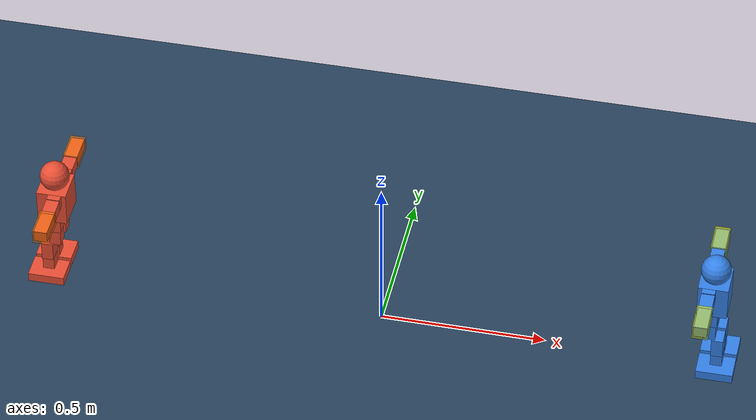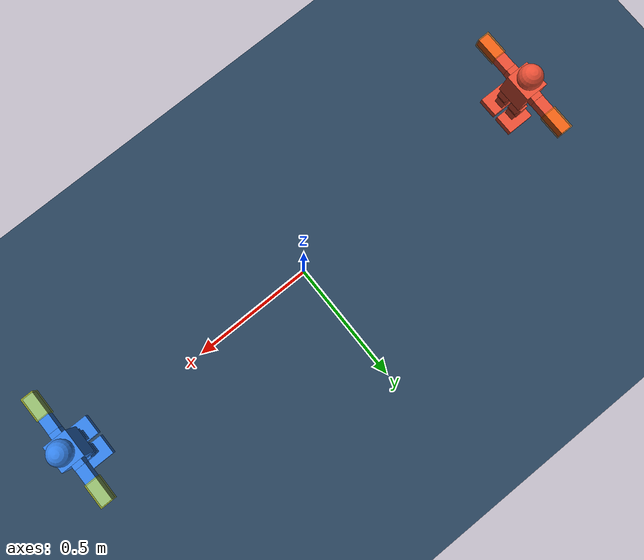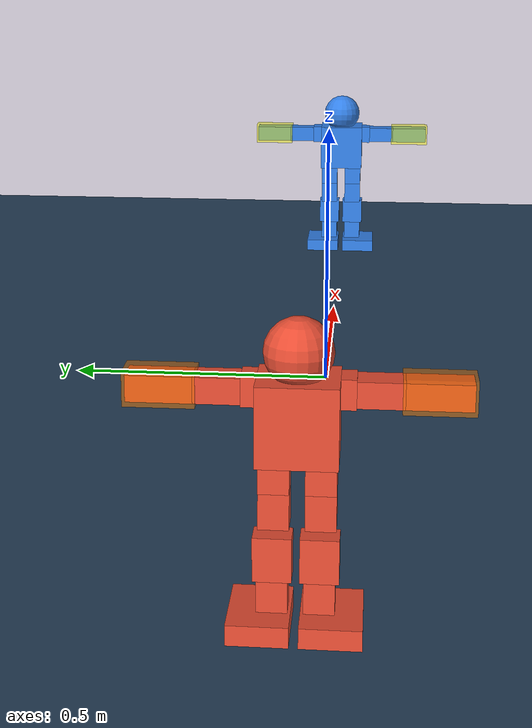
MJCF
<mujoco model="alpha_versus">

  <compiler angle="radian" autolimits="true"/>
  <option timestep="0.005" solver="Newton" iterations="50"/>
  <default>
    <geom solref="0.05 1" solimp="0.9 0.95 0.001"/>
    <joint damping="0.25" armature="0.01"/>
  </default>

  <asset>
    <texture type="2d" name="groundplane" builtin="checker"
             rgb1="0.2 0.3 0.4" rgb2="0.1 0.2 0.3"
             markrgb="0.8 0.8 0.8" width="300" height="300"/>
    <material name="groundplane" texture="groundplane" texuniform="true"
              texrepeat="5 5" reflectance="0.2"/>
  </asset>

  <worldbody>
    <light pos="0 0 3" dir="0 0 -1" diffuse="0.8 0.8 0.8"/>
    <geom name="floor" size="100 100 0.1" type="plane" material="groundplane"
          condim="3" friction="1 0.1 0.01"/>

    <!-- ══════════════ ROBOT 1 (blue) — x=+1.0, faces -X toward r2 ══════════ -->
    <body name="r1_root" pos="1.0 0 0.298" quat="0 0 0 1">
      <freejoint name="r1_freejoint"/>
      <geom name="r1_Body_link_col0" type="box" size="0.045 0.0525 0.0535"
            pos="0 0 0" rgba="0.2 0.5 0.9 1" condim="3"/>
      <inertial pos="0 0 0" mass="0.42"
                diaginertia="0.00078659 0.000684215 0.000669375"/>

      <body name="r1_Head_link" pos="0 0 0.0855" quat="1 0 0 0">
        <geom name="r1_Head_link_col0" type="sphere" size="0.045" rgba="0.2 0.5 0.9 1" condim="3"/>
        <inertial pos="0 0 0" mass="0.066"
                  diaginertia="3.7125e-05 3.7125e-05 3.7125e-05"/>
      </body>

      <!-- r1 Left leg -->
      <body name="r1_Left_Lateral_Thigh_link" pos="0.0025 0.03 -0.0535"
            quat="0.707105 0 0.707108 0">
        <joint name="r1_Left_Lateral_Thigh_link_joint" type="hinge" axis="0 0 1"
               range="-1.0 1.93" frictionloss="0.15"/>
        <geom name="r1_Left_Lateral_Thigh_link_col0" type="box" size="0.02 0.02 0.0225"
              pos="0.0225 0 0" quat="0.707105 0 -0.707108 0" rgba="0.2 0.5 0.9 1" condim="3"/>
        <inertial pos="0 0 0" mass="0.07"
                  diaginertia="2.114583e-05 2.114583e-05 1.8667e-05"/>
        <body name="r1_Left_Thigt_link" pos="0.0445 0 0"
              quat="0.499998 0.500000 -0.500000 0.500002">
          <joint name="r1_Left_Thigt_link_joint" type="hinge" axis="0 0 1"
                 range="-1.57 1.57" frictionloss="0.15"/>
          <geom name="r1_Left_Thigt_link_col0" type="box" size="0.0175 0.02 0.025"
                pos="0 -0.025 0" quat="0.707105 -0.707108 0 0" rgba="0.2 0.5 0.9 1" condim="3"/>
          <inertial pos="0 0 0" mass="0.115"
                    diaginertia="3.929166e-05 3.569791e-05 2.7073e-05"/>
          <body name="r1_Left_Leg_Link" pos="-0.025 -0.050 0" quat="1 0 0 0">
            <joint name="r1_Left_Leg_Link_joint" type="hinge" axis="0 0 1"
                   range="-2.7 0.3" frictionloss="0.15"/>
            <geom name="r1_Left_Leg_Link_col0" type="box" size="0.0175 0.025 0.03"
                  pos="0 -0.03 0" quat="0.707105 -0.707108 0 0" rgba="0.2 0.5 0.9 1" condim="3"/>
            <inertial pos="0 0 0" mass="0.11"
                      diaginertia="5.5917e-05 4.4229e-05 3.4146e-05"/>
            <body name="r1_Left_Ankle_link" pos="0 -0.06 0" quat="1 0 0 0">
              <joint name="r1_Left_Ankle_link_joint" type="hinge" axis="0 0 1"
                     range="-1.57 1.57" frictionloss="0.15"/>
              <geom name="r1_Left_Ankle_link_col0" type="box" size="0.0175 0.02 0.021"
                    pos="0 -0.021 0" quat="0.707105 -0.707108 0 0" rgba="0.2 0.5 0.9 1" condim="3"/>
              <inertial pos="0 0 0" mass="0.055"
                        diaginertia="1.5418e-05 1.37e-05 1.2948e-05"/>
              <body name="r1_Left_Feet_link" pos="0 -0.047 0"
                    quat="0.499998 -0.500000 0.500002 -0.500000">
                <joint name="r1_Left_Feet_link_joint" type="hinge" axis="0 0 1"
                       range="-1.57 0.43" frictionloss="0.15"/>
                <geom name="r1_Left_Feet_link_col0" type="box" size="0.055 0.04 0.014"
                      pos="0.009 0.016 0" quat="-0.707108 0.000002 0.707105 0.000002"
                      rgba="0.2 0.5 0.9 1" condim="3"/>
                <inertial pos="0 0 0" mass="0.07"
                          diaginertia="4.1907e-05 7.5157e-05 0.000107917"/>
              </body>
            </body>
          </body>
        </body>
      </body>

      <!-- r1 Left arm -->
      <body name="r1_Left_Shoulder_link" pos="0.012 0.0525 0.0335"
            quat="0.707105 0.707108 0 0">
        <joint name="r1_Left_Shoulder_link_joint" type="hinge" axis="0 0 1"
               range="0.0 3.1416" frictionloss="0.15"/>
        <geom name="r1_Left_Shoulder_link_col0" type="box" size="0.02 0.01 0.02"
              pos="0 0 -0.01" quat="0.707105 -0.707108 0 0" rgba="0.2 0.5 0.9 1" condim="3"/>
        <inertial pos="0 0 0" mass="0.06" diaginertia="1e-05 1.6e-05 1e-05"/>
        <body name="r1_Left_Arm_link" pos="0 0 -0.02"
              quat="0.499998 -0.500000 0.500002 -0.500000">
          <joint name="r1_Left_Arm_link_joint" type="hinge" axis="0 0 1"
                 range="-1.57 1.57" frictionloss="0.15"/>
          <geom name="r1_Left_Arm_link_col0" type="box" size="0.02 0.03 0.0175"
                pos="0 0.03 0" quat="0.707105 0 -0.707108 0" rgba="0.2 0.5 0.9 1" condim="3"/>
          <inertial pos="0 0 0" mass="0.0475"
                    diaginertia="1.9099e-05 1.1182e-05 2.0583e-05"/>
          <body name="r1_Left_Hand_link" pos="0 0.06 0" quat="1 0 0 0">
            <joint name="r1_Left_Hand_link_joint" type="hinge" axis="0 0 1"
                   range="-1.57 1.57" frictionloss="0.15"/>
            <geom name="r1_Left_Hand_link_col0" type="box" size="0.02 0.0425 0.0175"
                  pos="0 0.0425 0" quat="0.707105 0 -0.707108 0" rgba="0.2 0.5 0.9 1" condim="3"/>
            <inertial pos="0 0 0" mass="0.02"
                      diaginertia="1.4083e-05 4.708e-06 1.4708e-05"/>
            <site name="r1_lh_site" type="box" pos="0 0.0425 0" size="0.023 0.046 0.023" rgba="1 1 0 0.5"/>
          </body>
        </body>
      </body>

      <!-- r1 Right leg -->
      <body name="r1_Right_Lateral_Thigh_link" pos="0.0025 -0.03 -0.0535"
            quat="0.707105 0 0.707108 0">
        <joint name="r1_Right_Lateral_Thigh_link_joint" type="hinge" axis="0 0 1"
               range="-1.93 1.0" frictionloss="0.15"/>
        <geom name="r1_Right_Lateral_Thigh_link_col0" type="box" size="0.02 0.02 0.0225"
              pos="0.0225 0 0" quat="0.707105 0 -0.707108 0" rgba="0.2 0.5 0.9 1" condim="3"/>
        <inertial pos="0 0 0" mass="0.07"
                  diaginertia="2.114583e-05 2.114583e-05 1.8667e-05"/>
        <body name="r1_Right_Thigh_link" pos="0.0445 0 0"
              quat="0.499998 0.500000 -0.500000 0.500002">
          <joint name="r1_Right_Thigh_link_joint" type="hinge" axis="0 0 1"
                 range="-1.57 1.57" frictionloss="0.15"/>
          <geom name="r1_Right_Thigh_link_col0" type="box" size="0.0175 0.02 0.025"
                pos="0 -0.025 0" quat="0.707105 -0.707108 0 0" rgba="0.2 0.5 0.9 1" condim="3"/>
          <inertial pos="0 0 0" mass="0.115"
                    diaginertia="3.929166e-05 3.569791e-05 2.7073e-05"/>
          <body name="r1_Right_Leg_link" pos="-0.025 -0.050 0" quat="1 0 0 0">
            <joint name="r1_Right_Leg_link_joint" type="hinge" axis="0 0 1"
                   range="-2.7 0.3" frictionloss="0.15"/>
            <geom name="r1_Right_Leg_Link_col0" type="box" size="0.0175 0.025 0.03"
                  pos="0 -0.03 0" quat="0.707105 -0.707108 0 0" rgba="0.2 0.5 0.9 1" condim="3"/>
            <inertial pos="0 0 0" mass="0.11"
                      diaginertia="5.5917e-05 4.4229e-05 3.4146e-05"/>
            <body name="r1_Right_Ankle_link" pos="0 -0.06 0" quat="1 0 0 0">
              <joint name="r1_Right_Ankle_link_joint" type="hinge" axis="0 0 1"
                     range="-1.57 1.57" frictionloss="0.15"/>
              <geom name="r1_Right_Ankle_link_col0" type="box" size="0.0175 0.02 0.021"
                    pos="0 -0.021 0" quat="0.707105 -0.707108 0 0" rgba="0.2 0.5 0.9 1" condim="3"/>
              <inertial pos="0 0 0" mass="0.055"
                        diaginertia="1.5418e-05 1.37e-05 1.2948e-05"/>
              <body name="r1_Right_Feet_link" pos="0 -0.047 0"
                    quat="0.499998 -0.500000 0.500002 -0.500000">
                <joint name="r1_Right_Feet_link_joint" type="hinge" axis="0 0 1"
                       range="-0.43 1.57" frictionloss="0.15"/>
                <geom name="r1_Right_Feet_link_col0" type="box" size="0.055 0.04 0.014"
                      pos="0.009 -0.016 0" quat="-0.707108 0.000002 0.707105 0.000002"
                      rgba="0.2 0.5 0.9 1" condim="3"/>
                <inertial pos="0 0 0" mass="0.07"
                          diaginertia="4.1907e-05 7.5157e-05 0.000107917"/>
              </body>
            </body>
          </body>
        </body>
      </body>

      <!-- r1 Right arm -->
      <body name="r1_Right_Shoulder_link" pos="0.012 -0.0525 0.0335"
            quat="0.707105 0.707108 0 0">
        <joint name="r1_Right_Shoulder_link_joint" type="hinge" axis="0 0 1"
               range="0.0 3.1416" frictionloss="0.15"/>
        <geom name="r1_Right_Shoulder_link_col0" type="box" size="0.02 0.01 0.02"
              pos="0 0 0.01" quat="0.707105 -0.707108 0 0" rgba="0.2 0.5 0.9 1" condim="3"/>
        <inertial pos="0 0 0" mass="0.06" diaginertia="1e-05 1.6e-05 1e-05"/>
        <body name="r1_Right_Arm_link" pos="0 0 0.02"
              quat="0.499998 -0.500000 0.500002 -0.500000">
          <joint name="r1_Right_Arm_link_joint" type="hinge" axis="0 0 1"
                 range="-1.57 1.57" frictionloss="0.15"/>
          <geom name="r1_Right_Arm_link_col0" type="box" size="0.02 0.03 0.0175"
                pos="0 -0.03 0" quat="0.707105 0 -0.707108 0" rgba="0.2 0.5 0.9 1" condim="3"/>
          <inertial pos="0 0 0" mass="0.0475"
                    diaginertia="1.9099e-05 1.1182e-05 2.0583e-05"/>
          <body name="r1_Right_Hand_link" pos="0 -0.06 0" quat="1 0 0 0">
            <joint name="r1_Right_Hand_link_joint" type="hinge" axis="0 0 1"
                   range="-1.57 1.57" frictionloss="0.15"/>
            <geom name="r1_Right_Hand_link_col0" type="box" size="0.02 0.0425 0.0175"
                  pos="0 -0.0425 0" quat="0.707105 0 -0.707108 0" rgba="0.2 0.5 0.9 1" condim="3"/>
            <inertial pos="0 0 0" mass="0.02"
                      diaginertia="1.4083e-05 4.708e-06 1.4708e-05"/>
            <site name="r1_rh_site" type="box" pos="0 -0.0425 0" size="0.023 0.046 0.023" rgba="1 1 0 0.5"/>
          </body>
        </body>
      </body>

    </body>
    <!-- end r1_root -->

    <!-- ══════════════ ROBOT 2 (red) — x=-1.0, faces +X toward r1 ══════════ -->
    <body name="r2_root" pos="-1.0 0 0.298" quat="1 0 0 0">
      <freejoint name="r2_freejoint"/>
      <geom name="r2_Body_link_col0" type="box" size="0.045 0.0525 0.0535"
            pos="0 0 0" rgba="0.9 0.3 0.2 1" condim="3"/>
      <inertial pos="0 0 0" mass="0.42"
                diaginertia="0.00078659 0.000684215 0.000669375"/>

      <body name="r2_Head_link" pos="0 0 0.0855" quat="1 0 0 0">
        <geom name="r2_Head_link_col0" type="sphere" size="0.045" rgba="0.9 0.3 0.2 1" condim="3"/>
        <inertial pos="0 0 0" mass="0.066"
                  diaginertia="3.7125e-05 3.7125e-05 3.7125e-05"/>
      </body>

      <!-- r2 Left leg -->
      <body name="r2_Left_Lateral_Thigh_link" pos="0.0025 0.03 -0.0535"
            quat="0.707105 0 0.707108 0">
        <joint name="r2_Left_Lateral_Thigh_link_joint" type="hinge" axis="0 0 1"
               range="-1.0 1.93" frictionloss="0.15"/>
        <geom name="r2_Left_Lateral_Thigh_link_col0" type="box" size="0.02 0.02 0.0225"
              pos="0.0225 0 0" quat="0.707105 0 -0.707108 0" rgba="0.9 0.3 0.2 1" condim="3"/>
        <inertial pos="0 0 0" mass="0.07"
                  diaginertia="2.114583e-05 2.114583e-05 1.8667e-05"/>
        <body name="r2_Left_Thigt_link" pos="0.0445 0 0"
              quat="0.499998 0.500000 -0.500000 0.500002">
          <joint name="r2_Left_Thigt_link_joint" type="hinge" axis="0 0 1"
                 range="-1.57 1.57" frictionloss="0.15"/>
          <geom name="r2_Left_Thigt_link_col0" type="box" size="0.0175 0.02 0.025"
                pos="0 -0.025 0" quat="0.707105 -0.707108 0 0" rgba="0.9 0.3 0.2 1" condim="3"/>
          <inertial pos="0 0 0" mass="0.115"
                    diaginertia="3.929166e-05 3.569791e-05 2.7073e-05"/>
          <body name="r2_Left_Leg_Link" pos="-0.025 -0.050 0" quat="1 0 0 0">
            <joint name="r2_Left_Leg_Link_joint" type="hinge" axis="0 0 1"
                   range="-2.7 0.3" frictionloss="0.15"/>
            <geom name="r2_Left_Leg_Link_col0" type="box" size="0.0175 0.025 0.03"
                  pos="0 -0.03 0" quat="0.707105 -0.707108 0 0" rgba="0.9 0.3 0.2 1" condim="3"/>
            <inertial pos="0 0 0" mass="0.11"
                      diaginertia="5.5917e-05 4.4229e-05 3.4146e-05"/>
            <body name="r2_Left_Ankle_link" pos="0 -0.06 0" quat="1 0 0 0">
              <joint name="r2_Left_Ankle_link_joint" type="hinge" axis="0 0 1"
                     range="-1.57 1.57" frictionloss="0.15"/>
              <geom name="r2_Left_Ankle_link_col0" type="box" size="0.0175 0.02 0.021"
                    pos="0 -0.021 0" quat="0.707105 -0.707108 0 0" rgba="0.9 0.3 0.2 1" condim="3"/>
              <inertial pos="0 0 0" mass="0.055"
                        diaginertia="1.5418e-05 1.37e-05 1.2948e-05"/>
              <body name="r2_Left_Feet_link" pos="0 -0.047 0"
                    quat="0.499998 -0.500000 0.500002 -0.500000">
                <joint name="r2_Left_Feet_link_joint" type="hinge" axis="0 0 1"
                       range="-1.57 0.43" frictionloss="0.15"/>
                <geom name="r2_Left_Feet_link_col0" type="box" size="0.055 0.04 0.014"
                      pos="0.009 0.016 0" quat="-0.707108 0.000002 0.707105 0.000002"
                      rgba="0.9 0.3 0.2 1" condim="3"/>
                <inertial pos="0 0 0" mass="0.07"
                          diaginertia="4.1907e-05 7.5157e-05 0.000107917"/>
              </body>
            </body>
          </body>
        </body>
      </body>

      <!-- r2 Left arm -->
      <body name="r2_Left_Shoulder_link" pos="0.012 0.0525 0.0335"
            quat="0.707105 0.707108 0 0">
        <joint name="r2_Left_Shoulder_link_joint" type="hinge" axis="0 0 1"
               range="0.0 3.1416" frictionloss="0.15"/>
        <geom name="r2_Left_Shoulder_link_col0" type="box" size="0.02 0.01 0.02"
              pos="0 0 -0.01" quat="0.707105 -0.707108 0 0" rgba="0.9 0.3 0.2 1" condim="3"/>
        <inertial pos="0 0 0" mass="0.06" diaginertia="1e-05 1.6e-05 1e-05"/>
        <body name="r2_Left_Arm_link" pos="0 0 -0.02"
              quat="0.499998 -0.500000 0.500002 -0.500000">
          <joint name="r2_Left_Arm_link_joint" type="hinge" axis="0 0 1"
                 range="-1.57 1.57" frictionloss="0.15"/>
          <geom name="r2_Left_Arm_link_col0" type="box" size="0.02 0.03 0.0175"
                pos="0 0.03 0" quat="0.707105 0 -0.707108 0" rgba="0.9 0.3 0.2 1" condim="3"/>
          <inertial pos="0 0 0" mass="0.0475"
                    diaginertia="1.9099e-05 1.1182e-05 2.0583e-05"/>
          <body name="r2_Left_Hand_link" pos="0 0.06 0" quat="1 0 0 0">
            <joint name="r2_Left_Hand_link_joint" type="hinge" axis="0 0 1"
                   range="-1.57 1.57" frictionloss="0.15"/>
            <geom name="r2_Left_Hand_link_col0" type="box" size="0.02 0.0425 0.0175"
                  pos="0 0.0425 0" quat="0.707105 0 -0.707108 0" rgba="0.9 0.3 0.2 1" condim="3"/>
            <inertial pos="0 0 0" mass="0.02"
                      diaginertia="1.4083e-05 4.708e-06 1.4708e-05"/>
            <site name="r2_lh_site" type="box" pos="0 0.0425 0" size="0.023 0.046 0.023" rgba="1 0.5 0 0.5"/>
          </body>
        </body>
      </body>

      <!-- r2 Right leg -->
      <body name="r2_Right_Lateral_Thigh_link" pos="0.0025 -0.03 -0.0535"
            quat="0.707105 0 0.707108 0">
        <joint name="r2_Right_Lateral_Thigh_link_joint" type="hinge" axis="0 0 1"
               range="-1.93 1.0" frictionloss="0.15"/>
        <geom name="r2_Right_Lateral_Thigh_link_col0" type="box" size="0.02 0.02 0.0225"
              pos="0.0225 0 0" quat="0.707105 0 -0.707108 0" rgba="0.9 0.3 0.2 1" condim="3"/>
        <inertial pos="0 0 0" mass="0.07"
                  diaginertia="2.114583e-05 2.114583e-05 1.8667e-05"/>
        <body name="r2_Right_Thigh_link" pos="0.0445 0 0"
              quat="0.499998 0.500000 -0.500000 0.500002">
          <joint name="r2_Right_Thigh_link_joint" type="hinge" axis="0 0 1"
                 range="-1.57 1.57" frictionloss="0.15"/>
          <geom name="r2_Right_Thigh_link_col0" type="box" size="0.0175 0.02 0.025"
                pos="0 -0.025 0" quat="0.707105 -0.707108 0 0" rgba="0.9 0.3 0.2 1" condim="3"/>
          <inertial pos="0 0 0" mass="0.115"
                    diaginertia="3.929166e-05 3.569791e-05 2.7073e-05"/>
          <body name="r2_Right_Leg_link" pos="-0.025 -0.050 0" quat="1 0 0 0">
            <joint name="r2_Right_Leg_link_joint" type="hinge" axis="0 0 1"
                   range="-2.7 0.3" frictionloss="0.15"/>
            <geom name="r2_Right_Leg_Link_col0" type="box" size="0.0175 0.025 0.03"
                  pos="0 -0.03 0" quat="0.707105 -0.707108 0 0" rgba="0.9 0.3 0.2 1" condim="3"/>
            <inertial pos="0 0 0" mass="0.11"
                      diaginertia="5.5917e-05 4.4229e-05 3.4146e-05"/>
            <body name="r2_Right_Ankle_link" pos="0 -0.06 0" quat="1 0 0 0">
              <joint name="r2_Right_Ankle_link_joint" type="hinge" axis="0 0 1"
                     range="-1.57 1.57" frictionloss="0.15"/>
              <geom name="r2_Right_Ankle_link_col0" type="box" size="0.0175 0.02 0.021"
                    pos="0 -0.021 0" quat="0.707105 -0.707108 0 0" rgba="0.9 0.3 0.2 1" condim="3"/>
              <inertial pos="0 0 0" mass="0.055"
                        diaginertia="1.5418e-05 1.37e-05 1.2948e-05"/>
              <body name="r2_Right_Feet_link" pos="0 -0.047 0"
                    quat="0.499998 -0.500000 0.500002 -0.500000">
                <joint name="r2_Right_Feet_link_joint" type="hinge" axis="0 0 1"
                       range="-0.43 1.57" frictionloss="0.15"/>
                <geom name="r2_Right_Feet_link_col0" type="box" size="0.055 0.04 0.014"
                      pos="0.009 -0.016 0" quat="-0.707108 0.000002 0.707105 0.000002"
                      rgba="0.9 0.3 0.2 1" condim="3"/>
                <inertial pos="0 0 0" mass="0.07"
                          diaginertia="4.1907e-05 7.5157e-05 0.000107917"/>
              </body>
            </body>
          </body>
        </body>
      </body>

      <!-- r2 Right arm -->
      <body name="r2_Right_Shoulder_link" pos="0.012 -0.0525 0.0335"
            quat="0.707105 0.707108 0 0">
        <joint name="r2_Right_Shoulder_link_joint" type="hinge" axis="0 0 1"
               range="0.0 3.1416" frictionloss="0.15"/>
        <geom name="r2_Right_Shoulder_link_col0" type="box" size="0.02 0.01 0.02"
              pos="0 0 0.01" quat="0.707105 -0.707108 0 0" rgba="0.9 0.3 0.2 1" condim="3"/>
        <inertial pos="0 0 0" mass="0.06" diaginertia="1e-05 1.6e-05 1e-05"/>
        <body name="r2_Right_Arm_link" pos="0 0 0.02"
              quat="0.499998 -0.500000 0.500002 -0.500000">
          <joint name="r2_Right_Arm_link_joint" type="hinge" axis="0 0 1"
                 range="-1.57 1.57" frictionloss="0.15"/>
          <geom name="r2_Right_Arm_link_col0" type="box" size="0.02 0.03 0.0175"
                pos="0 -0.03 0" quat="0.707105 0 -0.707108 0" rgba="0.9 0.3 0.2 1" condim="3"/>
          <inertial pos="0 0 0" mass="0.0475"
                    diaginertia="1.9099e-05 1.1182e-05 2.0583e-05"/>
          <body name="r2_Right_Hand_link" pos="0 -0.06 0" quat="1 0 0 0">
            <joint name="r2_Right_Hand_link_joint" type="hinge" axis="0 0 1"
                   range="-1.57 1.57" frictionloss="0.15"/>
            <geom name="r2_Right_Hand_link_col0" type="box" size="0.02 0.0425 0.0175"
                  pos="0 -0.0425 0" quat="0.707105 0 -0.707108 0" rgba="0.9 0.3 0.2 1" condim="3"/>
            <inertial pos="0 0 0" mass="0.02"
                      diaginertia="1.4083e-05 4.708e-06 1.4708e-05"/>
            <site name="r2_rh_site" type="box" pos="0 -0.0425 0" size="0.023 0.046 0.023" rgba="1 0.5 0 0.5"/>
          </body>
        </body>
      </body>

    </body>
    <!-- end r2_root -->

  </worldbody>

  <contact>
    <exclude body1="r1_Left_Hand_link"  body2="r1_Left_Lateral_Thigh_link"/>
    <exclude body1="r1_Left_Hand_link"  body2="r1_Left_Thigt_link"/>
    <exclude body1="r1_Left_Hand_link"  body2="r1_root"/>
    <exclude body1="r1_Left_Hand_link"  body2="r1_Head_link"/>
    <exclude body1="r1_Right_Hand_link" body2="r1_Right_Lateral_Thigh_link"/>
    <exclude body1="r1_Right_Hand_link" body2="r1_Right_Thigh_link"/>
    <exclude body1="r1_Right_Hand_link" body2="r1_root"/>
    <exclude body1="r1_Right_Hand_link" body2="r1_Head_link"/>
    <exclude body1="r2_Left_Hand_link"  body2="r2_Left_Lateral_Thigh_link"/>
    <exclude body1="r2_Left_Hand_link"  body2="r2_Left_Thigt_link"/>
    <exclude body1="r2_Left_Hand_link"  body2="r2_root"/>
    <exclude body1="r2_Left_Hand_link"  body2="r2_Head_link"/>
    <exclude body1="r2_Right_Hand_link" body2="r2_Right_Lateral_Thigh_link"/>
    <exclude body1="r2_Right_Hand_link" body2="r2_Right_Thigh_link"/>
    <exclude body1="r2_Right_Hand_link" body2="r2_root"/>
    <exclude body1="r2_Right_Hand_link" body2="r2_Head_link"/>
  </contact>

  <actuator>
    <!-- r1 Left leg  (ctrl idx 0-4) -->
    <position name="r1_act_Left_Lateral_Thigh" joint="r1_Left_Lateral_Thigh_link_joint"
              kp="20" kv="10" ctrlrange="-1.0 1.93"   forcerange="-1.5 1.5"/>
    <position name="r1_act_Left_Thigt"         joint="r1_Left_Thigt_link_joint"
              kp="20" kv="10" ctrlrange="-1.57 1.57"  forcerange="-1.5 1.5"/>
    <position name="r1_act_Left_Leg"           joint="r1_Left_Leg_Link_joint"
              kp="20" kv="10" ctrlrange="-2.7 0.3"    forcerange="-1.5 1.5"/>
    <position name="r1_act_Left_Ankle"         joint="r1_Left_Ankle_link_joint"
              kp="20" kv="10" ctrlrange="-1.57 1.57"  forcerange="-1.5 1.5"/>
    <position name="r1_act_Left_Feet"          joint="r1_Left_Feet_link_joint"
              kp="20" kv="10" ctrlrange="-1.57 0.43"  forcerange="-1.5 1.5"/>
    <!-- r1 Left arm  (ctrl idx 5-7) -->
    <position name="r1_act_Left_Shoulder"      joint="r1_Left_Shoulder_link_joint"
              kp="20" kv="10" ctrlrange="0.0 3.1416"  forcerange="-1.5 1.5"/>
    <position name="r1_act_Left_Arm"           joint="r1_Left_Arm_link_joint"
              kp="20" kv="10" ctrlrange="-1.57 1.57"  forcerange="-1.5 1.5"/>
    <position name="r1_act_Left_Hand"          joint="r1_Left_Hand_link_joint"
              kp="20" kv="10" ctrlrange="-1.57 1.57"  forcerange="-1.5 1.5"/>
    <!-- r1 Right leg (ctrl idx 8-12) -->
    <position name="r1_act_Right_Lateral_Thigh" joint="r1_Right_Lateral_Thigh_link_joint"
              kp="20" kv="10" ctrlrange="-1.93 1.0"   forcerange="-1.5 1.5"/>
    <position name="r1_act_Right_Thigh"         joint="r1_Right_Thigh_link_joint"
              kp="20" kv="10" ctrlrange="-1.57 1.57"  forcerange="-1.5 1.5"/>
    <position name="r1_act_Right_Leg"           joint="r1_Right_Leg_link_joint"
              kp="20" kv="10" ctrlrange="-2.7 0.3"    forcerange="-1.5 1.5"/>
    <position name="r1_act_Right_Ankle"         joint="r1_Right_Ankle_link_joint"
              kp="20" kv="10" ctrlrange="-1.57 1.57"  forcerange="-1.5 1.5"/>
    <position name="r1_act_Right_Feet"          joint="r1_Right_Feet_link_joint"
              kp="20" kv="10" ctrlrange="-0.43 1.57"  forcerange="-1.5 1.5"/>
    <!-- r1 Right arm (ctrl idx 13-15) -->
    <position name="r1_act_Right_Shoulder"      joint="r1_Right_Shoulder_link_joint"
              kp="20" kv="10" ctrlrange="0.0 3.1416"  forcerange="-1.5 1.5"/>
    <position name="r1_act_Right_Arm"           joint="r1_Right_Arm_link_joint"
              kp="20" kv="10" ctrlrange="-1.57 1.57"  forcerange="-1.5 1.5"/>
    <position name="r1_act_Right_Hand"          joint="r1_Right_Hand_link_joint"
              kp="20" kv="10" ctrlrange="-1.57 1.57"  forcerange="-1.5 1.5"/>

    <!-- r2 Left leg  (ctrl idx 16-20) -->
    <position name="r2_act_Left_Lateral_Thigh" joint="r2_Left_Lateral_Thigh_link_joint"
              kp="20" kv="10" ctrlrange="-1.0 1.93"   forcerange="-1.5 1.5"/>
    <position name="r2_act_Left_Thigt"         joint="r2_Left_Thigt_link_joint"
              kp="20" kv="10" ctrlrange="-1.57 1.57"  forcerange="-1.5 1.5"/>
    <position name="r2_act_Left_Leg"           joint="r2_Left_Leg_Link_joint"
              kp="20" kv="10" ctrlrange="-2.7 0.3"    forcerange="-1.5 1.5"/>
    <position name="r2_act_Left_Ankle"         joint="r2_Left_Ankle_link_joint"
              kp="20" kv="10" ctrlrange="-1.57 1.57"  forcerange="-1.5 1.5"/>
    <position name="r2_act_Left_Feet"          joint="r2_Left_Feet_link_joint"
              kp="20" kv="10" ctrlrange="-1.57 0.43"  forcerange="-1.5 1.5"/>
    <!-- r2 Left arm  (ctrl idx 21-23) -->
    <position name="r2_act_Left_Shoulder"      joint="r2_Left_Shoulder_link_joint"
              kp="20" kv="10" ctrlrange="0.0 3.1416"  forcerange="-1.5 1.5"/>
    <position name="r2_act_Left_Arm"           joint="r2_Left_Arm_link_joint"
              kp="20" kv="10" ctrlrange="-1.57 1.57"  forcerange="-1.5 1.5"/>
    <position name="r2_act_Left_Hand"          joint="r2_Left_Hand_link_joint"
              kp="20" kv="10" ctrlrange="-1.57 1.57"  forcerange="-1.5 1.5"/>
    <!-- r2 Right leg (ctrl idx 24-28) -->
    <position name="r2_act_Right_Lateral_Thigh" joint="r2_Right_Lateral_Thigh_link_joint"
              kp="20" kv="10" ctrlrange="-1.93 1.0"   forcerange="-1.5 1.5"/>
    <position name="r2_act_Right_Thigh"         joint="r2_Right_Thigh_link_joint"
              kp="20" kv="10" ctrlrange="-1.57 1.57"  forcerange="-1.5 1.5"/>
    <position name="r2_act_Right_Leg"           joint="r2_Right_Leg_link_joint"
              kp="20" kv="10" ctrlrange="-2.7 0.3"    forcerange="-1.5 1.5"/>
    <position name="r2_act_Right_Ankle"         joint="r2_Right_Ankle_link_joint"
              kp="20" kv="10" ctrlrange="-1.57 1.57"  forcerange="-1.5 1.5"/>
    <position name="r2_act_Right_Feet"          joint="r2_Right_Feet_link_joint"
              kp="20" kv="10" ctrlrange="-0.43 1.57"  forcerange="-1.5 1.5"/>
    <!-- r2 Right arm (ctrl idx 29-31) -->
    <position name="r2_act_Right_Shoulder"      joint="r2_Right_Shoulder_link_joint"
              kp="20" kv="10" ctrlrange="0.0 3.1416"  forcerange="-1.5 1.5"/>
    <position name="r2_act_Right_Arm"           joint="r2_Right_Arm_link_joint"
              kp="20" kv="10" ctrlrange="-1.57 1.57"  forcerange="-1.5 1.5"/>
    <position name="r2_act_Right_Hand"          joint="r2_Right_Hand_link_joint"
              kp="20" kv="10" ctrlrange="-1.57 1.57"  forcerange="-1.5 1.5"/>
  </actuator>

  <sensor>
    <touch name="r1_lh_touch" site="r1_lh_site"/>
    <touch name="r1_rh_touch" site="r1_rh_site"/>
    <touch name="r2_lh_touch" site="r2_lh_site"/>
    <touch name="r2_rh_touch" site="r2_rh_site"/>
  </sensor>

</mujoco>
